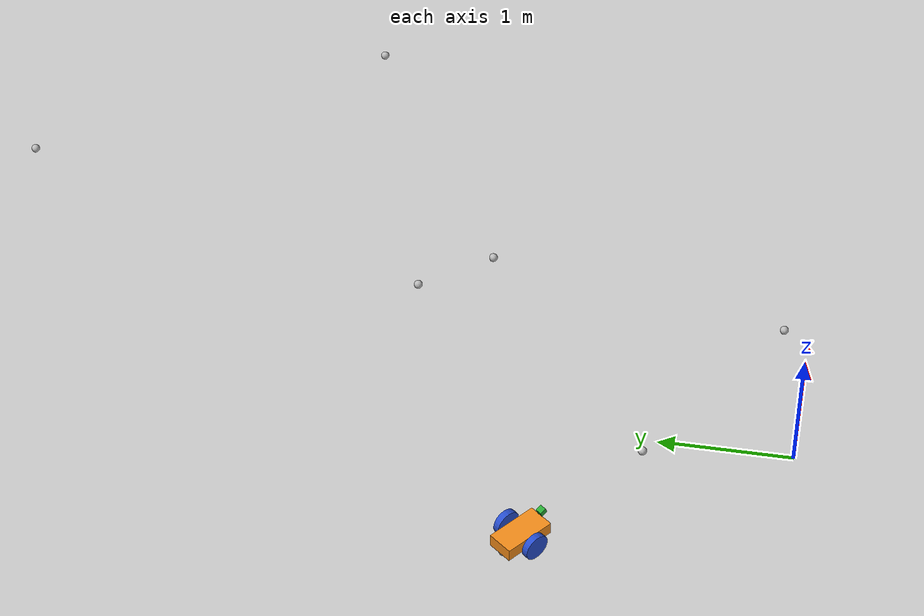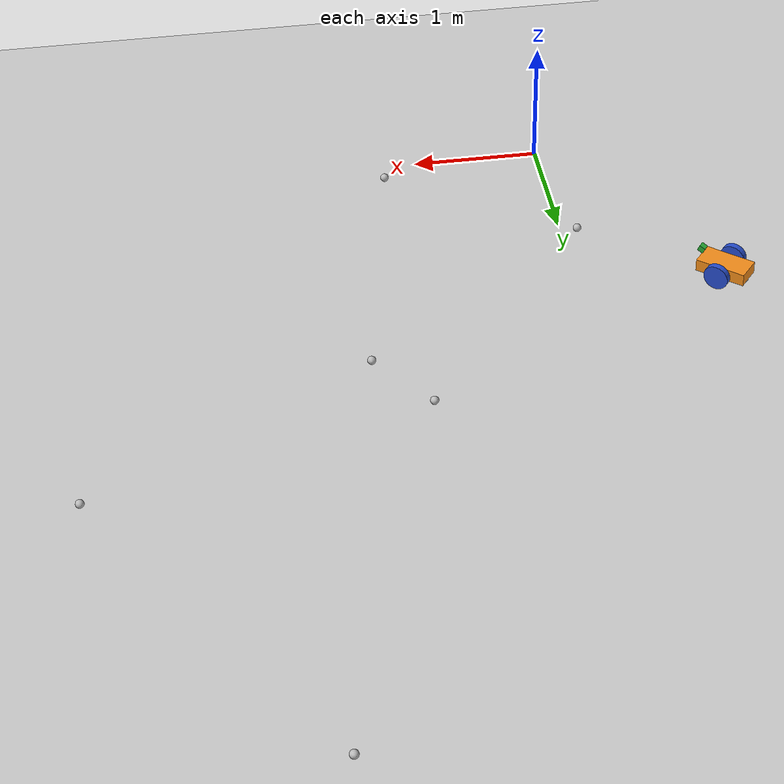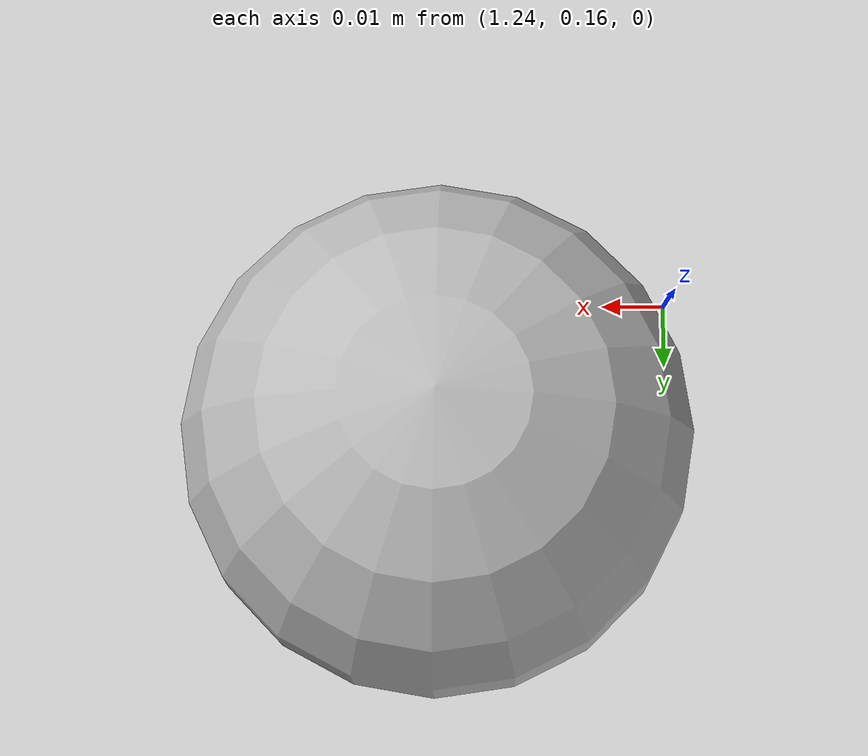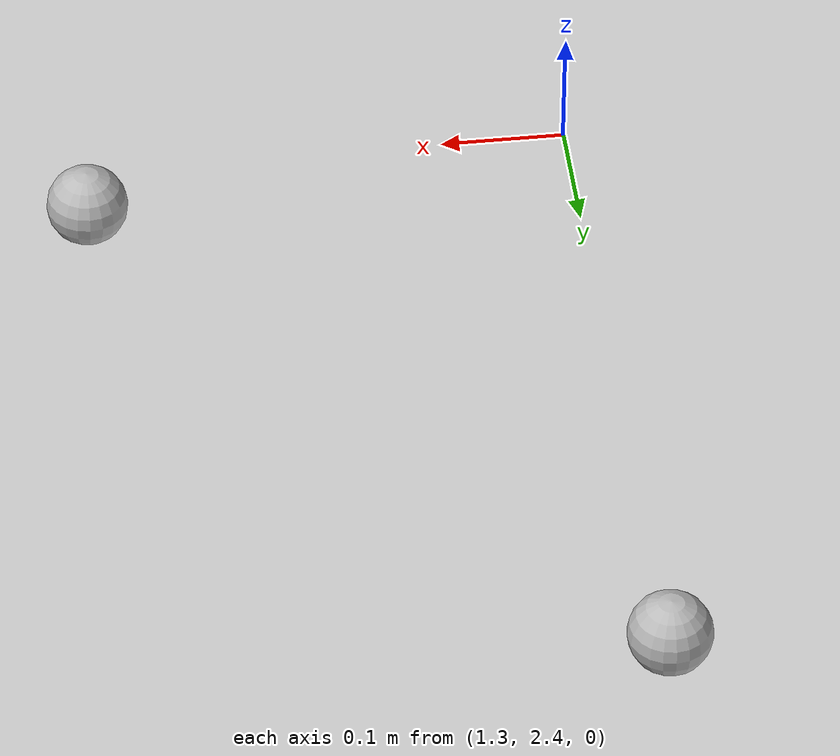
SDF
<sdf version="1.6">
 <world name="default">
  <model name="tennis_court">
   <static>1</static>
   <link name="link">
    <collision name="collision">
     <geometry><plane><normal>0 0 1</normal><size>11 23</size></plane></geometry>
     <surface><friction><ode><mu>100</mu><mu2>50</mu2></ode></friction></surface>
    </collision>
    <visual name="visual">
     <cast_shadows>0</cast_shadows>
     <geometry><plane><normal>0 0 1</normal><size>11 23</size></plane></geometry>
     <material>
      <script>
       <uri>model://tennis_court/materials/scripts</uri>
       <uri>model://tennis_court/materials/textures/</uri>
       <name>TennisCourt/Image</name>
      </script>
     </material>
    </visual>
   </link>
  </model>
  <light name="sun" type="directional">
   <pose>0 0 10 0 -0 0</pose>
   <diffuse>0.8 0.8 0.8 1</diffuse>
   <specular>0.2 0.2 0.2 1</specular>
   <attenuation>
    <range>1000</range>
    <constant>0.9</constant>
    <linear>0.01</linear>
    <quadratic>0.001</quadratic>
   </attenuation>
   <direction>-0.5 0.1 -0.9</direction>
  </light>
  <gravity>0 0 -9.8</gravity>
  <magnetic_field>6e-06 2.3e-05 -4.2e-05</magnetic_field>
  <atmosphere type="adiabatic"/>
  <physics name="default_physics" default="0" type="ode">
   <max_step_size>0.001</max_step_size>
   <real_time_factor>1</real_time_factor>
   <real_time_update_rate>1000</real_time_update_rate>
  </physics>
  <scene><ambient>0.7 0.7 0.7 1</ambient><background>0.5 0.7 0.8 1</background><shadows>1</shadows></scene>
  <audio><device>default</device></audio>
  <spherical_coordinates>
   <surface_model>EARTH_WGS84</surface_model>
   <latitude_deg>0</latitude_deg>
   <longitude_deg>0</longitude_deg>
   <elevation>0</elevation>
   <heading_deg>0</heading_deg>
  </spherical_coordinates>
  <model name="alligator">
   <link name="chassis">
    <inertial>
     <pose>0.001325 0 0.1 0 -0 0</pose>
     <mass>15.1</mass>
     <inertia>
      <ixx>0.100001</ixx>
      <ixy>0</ixy>
      <ixz>2.94468e-19</ixz>
      <iyy>0.103975</iyy>
      <iyz>0</iyz>
      <izz>0.103975</izz>
     </inertia>
    </inertial>
    <collision name="chassis_fixed_joint_lump__collision_collision">
     <geometry><box><size>0.4 0.2 0.1</size></box></geometry>
    </collision>
    <collision name="chassis_fixed_joint_lump__caster_collision_collision_1">
     <pose>-0.15 0 -0.05 0 -0 0</pose>
     <geometry><sphere><radius>0.05</radius></sphere></geometry>
    </collision>
    <collision name="chassis_fixed_joint_lump__caster_front_collision_collision_2">
     <pose>0.15 0 -0.05 0 -0 0</pose>
     <geometry><sphere><radius>0.05</radius></sphere></geometry>
    </collision>
    <collision name="chassis_fixed_joint_lump__camera_collision_3">
     <pose>0.2 0 0.1 0 -0 0</pose>
     <geometry><box><size>0.05 0.05 0.05</size></box></geometry>
    </collision>
    <visual name="chassis_visual_visual">
     <geometry><box><size>0.4 0.2 0.1</size></box></geometry>
     <material>
      <script><name>Gazebo/Orange</name><uri>file://media/materials/scripts/gazebo.material</uri></script>
     </material>
    </visual>
    <visual name="chassis_fixed_joint_lump__caster_visual_visual_1">
     <pose>-0.15 0 -0.05 0 -0 0</pose>
     <geometry><sphere><radius>0.05</radius></sphere></geometry>
    </visual>
    <visual name="chassis_fixed_joint_lump__caster_front_visual_visual_2">
     <pose>0.15 0 -0.05 0 -0 0</pose>
     <geometry><sphere><radius>0.05</radius></sphere></geometry>
    </visual>
    <visual name="chassis_fixed_joint_lump__camera_visual_3">
     <pose>0.2 0 0.1 0 -0.385797 0</pose>
     <geometry><box><size>0.05 0.05 0.05</size></box></geometry>
     <material>
      <script><name>Gazebo/Green</name><uri>file://media/materials/scripts/gazebo.material</uri></script>
     </material>
    </visual>
    <sensor name="camera1" type="camera">
     <update_rate>30</update_rate>
     <camera name="head">
      <horizontal_fov>1.39626</horizontal_fov>
      <image><width>800</width><height>800</height><format>R8G8B8</format></image>
      <clip><near>0.02</near><far>300</far></clip>
     </camera>
     <plugin name="camera_controller" filename="libgazebo_ros_camera.so">
      <alwaysOn>1</alwaysOn>
      <updateRate>0.0</updateRate>
      <cameraName>mybot/camera1</cameraName>
      <imageTopicName>image_raw</imageTopicName>
      <cameraInfoTopicName>camera_info</cameraInfoTopicName>
      <frameName>camera</frameName>
      <hackBaseline>0.07</hackBaseline>
      <distortionK1>0.0</distortionK1>
      <distortionK2>0.0</distortionK2>
      <distortionK3>0.0</distortionK3>
      <distortionT1>0.0</distortionT1>
      <distortionT2>0.0</distortionT2>
      <robotNamespace>/</robotNamespace>
     </plugin>
     <pose>0.2 0 0.1 0 -0.385797 0</pose>
    </sensor>
   </link>
   <link name="left_wheel">
    <pose>0 0.15 0 0 -0 0</pose>
    <inertial>
     <pose>0 0 0 -0 1.5707 1.5707</pose>
     <mass>5</mass>
     <inertia><ixx>0.1</ixx><ixy>0</ixy><ixz>0</ixz><iyy>0.1</iyy><iyz>0</iyz><izz>0.1</izz></inertia>
    </inertial>
    <collision name="left_wheel_fixed_joint_lump__collision_collision">
     <pose>0 0 0 3.14159 1.57079 -1.57089</pose>
     <geometry><cylinder><length>0.05</length><radius>0.1</radius></cylinder></geometry>
    </collision>
    <visual name="left_wheel_visual_visual">
     <pose>0 0 0 3.14159 1.57079 -1.57089</pose>
     <geometry><cylinder><length>0.05</length><radius>0.1</radius></cylinder></geometry>
     <material>
      <script><name>Gazebo/Blue</name><uri>file://media/materials/scripts/gazebo.material</uri></script>
     </material>
    </visual>
   </link>
   <joint name="left_wheel_hinge" type="revolute">
    <child>left_wheel</child>
    <parent>chassis</parent>
    <axis>
     <xyz>0 1 0</xyz>
     <limit><lower>-1e+16</lower><upper>1e+16</upper></limit>
     <dynamics><spring_reference>0</spring_reference><spring_stiffness>0</spring_stiffness></dynamics>
     <use_parent_model_frame>1</use_parent_model_frame>
    </axis>
   </joint>
   <link name="right_wheel">
    <pose>0 -0.15 0 0 -0 0</pose>
    <inertial>
     <pose>0 0 0 -0 1.5707 1.5707</pose>
     <mass>5</mass>
     <inertia><ixx>0.1</ixx><ixy>0</ixy><ixz>0</ixz><iyy>0.1</iyy><iyz>0</iyz><izz>0.1</izz></inertia>
    </inertial>
    <collision name="right_wheel_fixed_joint_lump__collision_collision">
     <pose>0 0 0 3.14159 1.57079 -1.57089</pose>
     <geometry><cylinder><length>0.05</length><radius>0.1</radius></cylinder></geometry>
    </collision>
    <visual name="right_wheel_visual_visual">
     <pose>0 0 0 3.14159 1.57079 -1.57089</pose>
     <geometry><cylinder><length>0.05</length><radius>0.1</radius></cylinder></geometry>
     <material>
      <script><name>Gazebo/Blue</name><uri>file://media/materials/scripts/gazebo.material</uri></script>
     </material>
    </visual>
   </link>
   <joint name="right_wheel_hinge" type="revolute">
    <child>right_wheel</child>
    <parent>chassis</parent>
    <axis>
     <xyz>0 1 0</xyz>
     <limit><lower>-1e+16</lower><upper>1e+16</upper></limit>
     <dynamics><spring_reference>0</spring_reference><spring_stiffness>0</spring_stiffness></dynamics>
     <use_parent_model_frame>1</use_parent_model_frame>
    </axis>
   </joint>
   <static>0</static>
   <plugin name="differential_drive_controller" filename="libgazebo_ros_diff_drive.so">
    <legacyMode>0</legacyMode>
    <alwaysOn>1</alwaysOn>
    <updateRate>10</updateRate>
    <leftJoint>left_wheel_hinge</leftJoint>
    <rightJoint>right_wheel_hinge</rightJoint>
    <wheelSeparation>0.4</wheelSeparation>
    <wheelDiameter>0.2</wheelDiameter>
    <torque>10</torque>
    <commandTopic>cmd_vel</commandTopic>
    <odometryTopic>odom</odometryTopic>
    <odometryFrame>odom</odometryFrame>
    <robotBaseFrame>chassis</robotBaseFrame>
    <robotNamespace>/</robotNamespace>
   </plugin>
   <pose>-1.14493 1.84942 0.100001 5e-06 4e-06 -0.682426</pose>
  </model>
  <model name="tennis_ball">
   <static>1</static>
   <link name="link">
    <collision name="collision">
     <geometry><sphere><radius>0.0325</radius></sphere></geometry>
     <surface><friction><ode><mu>100</mu><mu2>50</mu2></ode></friction></surface>
    </collision>
    <visual name="visual">
     <geometry><sphere><radius>0.0325</radius></sphere></geometry>
     <material>
      <script>
       <uri>model://tennis_ball/materials/scripts</uri>
       <uri>model://tennis_ball/materials/textures/</uri>
       <name>TennisBall/Image</name>
      </script>
     </material>
    </visual>
   </link>
   <pose>-0.134954 1.09575 0.030909 0 -0 0</pose>
  </model>
  <model name="tennis_ball_0">
   <static>1</static>
   <link name="link">
    <collision name="collision">
     <geometry><sphere><radius>0.0325</radius></sphere></geometry>
     <surface><friction><ode><mu>100</mu><mu2>50</mu2></ode></friction></surface>
    </collision>
    <visual name="visual">
     <geometry><sphere><radius>0.0325</radius></sphere></geometry>
     <material>
      <script>
       <uri>model://tennis_ball/materials/scripts</uri>
       <uri>model://tennis_ball/materials/textures/</uri>
       <name>TennisBall/Image</name>
      </script>
     </material>
    </visual>
   </link>
   <pose>1.27607 0.188341 0.03267 0 -0 0</pose>
  </model>
  <model name="tennis_ball_1">
   <static>1</static>
   <link name="link">
    <collision name="collision">
     <geometry><sphere><radius>0.0325</radius></sphere></geometry>
     <surface><friction><ode><mu>100</mu><mu2>50</mu2></ode></friction></surface>
    </collision>
    <visual name="visual">
     <geometry><sphere><radius>0.0325</radius></sphere></geometry>
     <material>
      <script>
       <uri>model://tennis_ball/materials/scripts</uri>
       <uri>model://tennis_ball/materials/textures/</uri>
       <name>TennisBall/Image</name>
      </script>
     </material>
    </visual>
   </link>
   <pose>1.69301 2.4724 0.030366 0 -0 0</pose>
  </model>
  <model name="tennis_ball_2">
   <static>1</static>
   <link name="link">
    <collision name="collision">
     <geometry><sphere><radius>0.0325</radius></sphere></geometry>
     <surface><friction><ode><mu>100</mu><mu2>50</mu2></ode></friction></surface>
    </collision>
    <visual name="visual">
     <geometry><sphere><radius>0.0325</radius></sphere></geometry>
     <material>
      <script>
       <uri>model://tennis_ball/materials/scripts</uri>
       <uri>model://tennis_ball/materials/textures/</uri>
       <name>TennisBall/Image</name>
      </script>
     </material>
    </visual>
   </link>
   <pose>1.30326 2.99564 0.031917 0 -0 0</pose>
  </model>
  <model name="tennis_ball_3">
   <static>1</static>
   <link name="link">
    <collision name="collision">
     <geometry><sphere><radius>0.0325</radius></sphere></geometry>
     <surface><friction><ode><mu>100</mu><mu2>50</mu2></ode></friction></surface>
    </collision>
    <visual name="visual">
     <geometry><sphere><radius>0.0325</radius></sphere></geometry>
     <material>
      <script>
       <uri>model://tennis_ball/materials/scripts</uri>
       <uri>model://tennis_ball/materials/textures/</uri>
       <name>TennisBall/Image</name>
      </script>
     </material>
    </visual>
   </link>
   <pose>3.90193 3.70524 0.033496 0 -0 0</pose>
  </model>
  <model name="tennis_ball_4">
   <static>1</static>
   <link name="link">
    <collision name="collision">
     <geometry><sphere><radius>0.0325</radius></sphere></geometry>
     <surface><friction><ode><mu>100</mu><mu2>50</mu2></ode></friction></surface>
    </collision>
    <visual name="visual">
     <geometry><sphere><radius>0.0325</radius></sphere></geometry>
     <material>
      <script>
       <uri>model://tennis_ball/materials/scripts</uri>
       <uri>model://tennis_ball/materials/textures/</uri>
       <name>TennisBall/Image</name>
      </script>
     </material>
    </visual>
   </link>
   <pose>2.32041 6.25697 0.033648 0 -0 0</pose>
  </model>
 </world>
</sdf>
